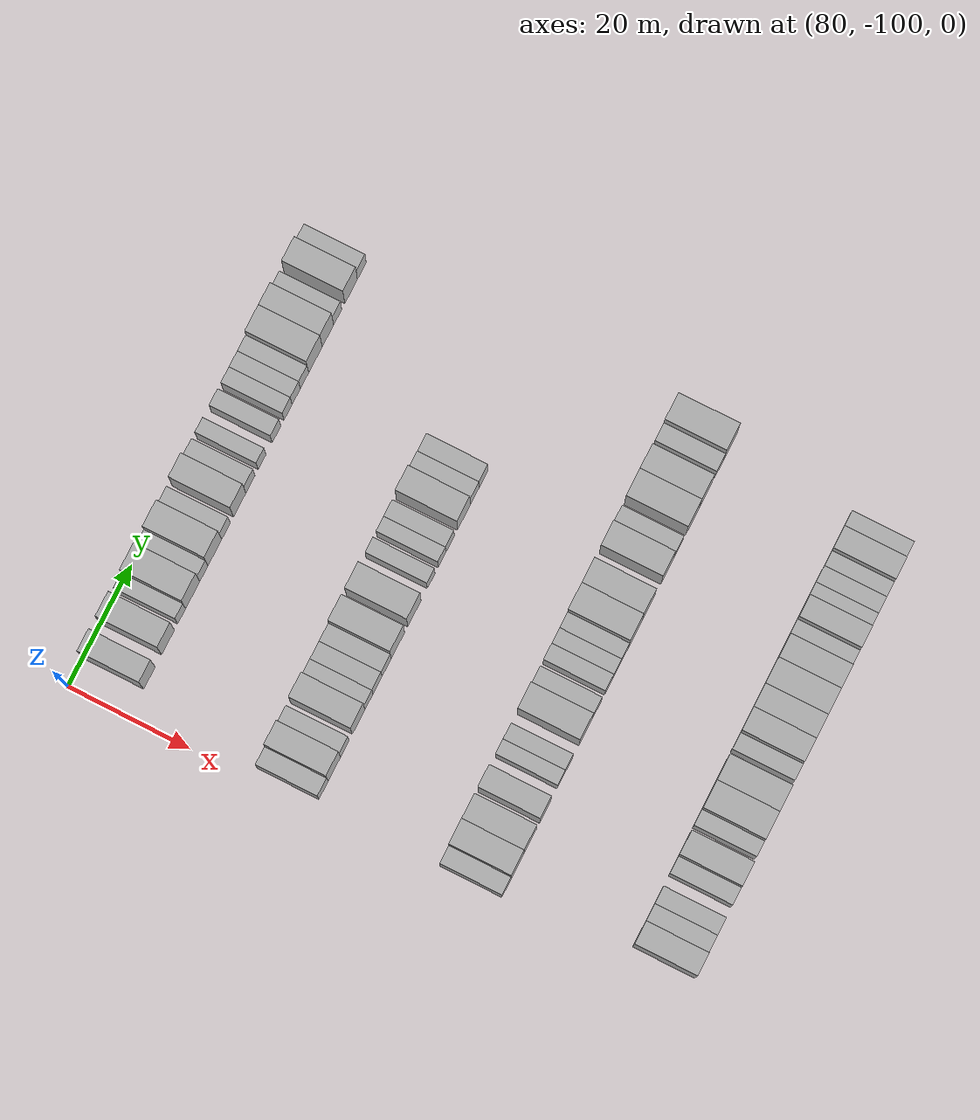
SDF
<sdf version="1.6">
 <world name="default">
  <model name="building_553">
   <static>1</static>
   <pose>85.0000 -93.4616 0 0.000000 0.000000 0.000000</pose>
   <link name="link">
    <pose>0 0 4.50 0 0 0</pose>
    <collision name="collision"><geometry><box><size>10.0000 3.6238 9.0000</size></box></geometry></collision>
    <visual name="visual">
     <cast_shadows>0</cast_shadows>
     <geometry><box><size>10.0000 3.6238 9.0000</size></box></geometry>
     <material>
      <script>
       <uri>model://HANNAS_wall/materials/scripts</uri>
       <uri>model://HANNAS_wall/materials/textures</uri>
       <name>vrc/HANNAS_wall</name>
      </script>
     </material>
    </visual>
   </link>
  </model>
  <model name="building_554">
   <static>1</static>
   <pose>85.0000 -87.6176 0 0.000000 0.000000 0.000000</pose>
   <link name="link">
    <pose>0 0 4.50 0 0 0</pose>
    <collision name="collision"><geometry><box><size>10.0000 4.0642 9.0000</size></box></geometry></collision>
    <visual name="visual">
     <cast_shadows>0</cast_shadows>
     <geometry><box><size>10.0000 4.0642 9.0000</size></box></geometry>
     <material>
      <script>
       <uri>model://HANNAS_wall/materials/scripts</uri>
       <uri>model://HANNAS_wall/materials/textures</uri>
       <name>vrc/HANNAS_wall</name>
      </script>
     </material>
    </visual>
   </link>
  </model>
  <model name="building_555">
   <static>1</static>
   <pose>85.0000 -83.3449 0 0.000000 0.000000 0.000000</pose>
   <link name="link">
    <pose>0 0 3.00 0 0 0</pose>
    <collision name="collision"><geometry><box><size>10.0000 2.4812 6.0000</size></box></geometry></collision>
    <visual name="visual">
     <cast_shadows>0</cast_shadows>
     <geometry><box><size>10.0000 2.4812 6.0000</size></box></geometry>
     <material>
      <script>
       <uri>model://HANNAS_wall/materials/scripts</uri>
       <uri>model://HANNAS_wall/materials/textures</uri>
       <name>vrc/HANNAS_wall</name>
      </script>
     </material>
    </visual>
   </link>
  </model>
  <model name="building_556">
   <static>1</static>
   <pose>85.0000 -79.8800 0 0.000000 0.000000 0.000000</pose>
   <link name="link">
    <pose>0 0 4.50 0 0 0</pose>
    <collision name="collision"><geometry><box><size>10.0000 4.4484 9.0000</size></box></geometry></collision>
    <visual name="visual">
     <cast_shadows>0</cast_shadows>
     <geometry><box><size>10.0000 4.4484 9.0000</size></box></geometry>
     <material>
      <script>
       <uri>model://HANNAS_wall/materials/scripts</uri>
       <uri>model://HANNAS_wall/materials/textures</uri>
       <name>vrc/HANNAS_wall</name>
      </script>
     </material>
    </visual>
   </link>
  </model>
  <model name="building_557">
   <static>1</static>
   <pose>85.0000 -76.3557 0 0.000000 0.000000 0.000000</pose>
   <link name="link">
    <pose>0 0 3.00 0 0 0</pose>
    <collision name="collision"><geometry><box><size>10.0000 2.6003 6.0000</size></box></geometry></collision>
    <visual name="visual">
     <cast_shadows>0</cast_shadows>
     <geometry><box><size>10.0000 2.6003 6.0000</size></box></geometry>
     <material>
      <script>
       <uri>model://HANNAS_wall/materials/scripts</uri>
       <uri>model://HANNAS_wall/materials/textures</uri>
       <name>vrc/HANNAS_wall</name>
      </script>
     </material>
    </visual>
   </link>
  </model>
  <model name="building_558">
   <static>1</static>
   <pose>85.0000 -72.8877 0 0.000000 0.000000 0.000000</pose>
   <link name="link">
    <pose>0 0 4.50 0 0 0</pose>
    <collision name="collision"><geometry><box><size>10.0000 4.3357 9.0000</size></box></geometry></collision>
    <visual name="visual">
     <cast_shadows>0</cast_shadows>
     <geometry><box><size>10.0000 4.3357 9.0000</size></box></geometry>
     <material>
      <script>
       <uri>model://HANNAS_wall/materials/scripts</uri>
       <uri>model://HANNAS_wall/materials/textures</uri>
       <name>vrc/HANNAS_wall</name>
      </script>
     </material>
    </visual>
   </link>
  </model>
  <model name="building_559">
   <static>1</static>
   <pose>85.0000 -69.3419 0 0.000000 0.000000 0.000000</pose>
   <link name="link">
    <pose>0 0 3.00 0 0 0</pose>
    <collision name="collision"><geometry><box><size>10.0000 2.7560 6.0000</size></box></geometry></collision>
    <visual name="visual">
     <cast_shadows>0</cast_shadows>
     <geometry><box><size>10.0000 2.7560 6.0000</size></box></geometry>
     <material>
      <script>
       <uri>model://HANNAS_wall/materials/scripts</uri>
       <uri>model://HANNAS_wall/materials/textures</uri>
       <name>vrc/HANNAS_wall</name>
      </script>
     </material>
    </visual>
   </link>
  </model>
  <model name="building_560">
   <static>1</static>
   <pose>85.0000 -65.0018 0 0.000000 0.000000 0.000000</pose>
   <link name="link">
    <pose>0 0 4.50 0 0 0</pose>
    <collision name="collision"><geometry><box><size>10.0000 3.9242 9.0000</size></box></geometry></collision>
    <visual name="visual">
     <cast_shadows>0</cast_shadows>
     <geometry><box><size>10.0000 3.9242 9.0000</size></box></geometry>
     <material>
      <script>
       <uri>model://HANNAS_wall/materials/scripts</uri>
       <uri>model://HANNAS_wall/materials/textures</uri>
       <name>vrc/HANNAS_wall</name>
      </script>
     </material>
    </visual>
   </link>
  </model>
  <model name="building_561">
   <static>1</static>
   <pose>85.0000 -61.5790 0 0.000000 0.000000 0.000000</pose>
   <link name="link">
    <pose>0 0 3.00 0 0 0</pose>
    <collision name="collision"><geometry><box><size>10.0000 2.9213 6.0000</size></box></geometry></collision>
    <visual name="visual">
     <cast_shadows>0</cast_shadows>
     <geometry><box><size>10.0000 2.9213 6.0000</size></box></geometry>
     <material>
      <script>
       <uri>model://HANNAS_wall/materials/scripts</uri>
       <uri>model://HANNAS_wall/materials/textures</uri>
       <name>vrc/HANNAS_wall</name>
      </script>
     </material>
    </visual>
   </link>
  </model>
  <model name="building_562">
   <static>1</static>
   <pose>85.0000 -57.8842 0 0.000000 0.000000 0.000000</pose>
   <link name="link">
    <pose>0 0 3.00 0 0 0</pose>
    <collision name="collision"><geometry><box><size>10.0000 2.4681 6.0000</size></box></geometry></collision>
    <visual name="visual">
     <cast_shadows>0</cast_shadows>
     <geometry><box><size>10.0000 2.4681 6.0000</size></box></geometry>
     <material>
      <script>
       <uri>model://HANNAS_wall/materials/scripts</uri>
       <uri>model://HANNAS_wall/materials/textures</uri>
       <name>vrc/HANNAS_wall</name>
      </script>
     </material>
    </visual>
   </link>
  </model>
  <model name="building_563">
   <static>1</static>
   <pose>85.0000 -53.2837 0 0.000000 0.000000 0.000000</pose>
   <link name="link">
    <pose>0 0 3.00 0 0 0</pose>
    <collision name="collision"><geometry><box><size>10.0000 2.7330 6.0000</size></box></geometry></collision>
    <visual name="visual">
     <cast_shadows>0</cast_shadows>
     <geometry><box><size>10.0000 2.7330 6.0000</size></box></geometry>
     <material>
      <script>
       <uri>model://HANNAS_wall/materials/scripts</uri>
       <uri>model://HANNAS_wall/materials/textures</uri>
       <name>vrc/HANNAS_wall</name>
      </script>
     </material>
    </visual>
   </link>
  </model>
  <model name="building_564">
   <static>1</static>
   <pose>85.0000 -49.6089 0 0.000000 0.000000 0.000000</pose>
   <link name="link">
    <pose>0 0 3.00 0 0 0</pose>
    <collision name="collision"><geometry><box><size>10.0000 2.6166 6.0000</size></box></geometry></collision>
    <visual name="visual">
     <cast_shadows>0</cast_shadows>
     <geometry><box><size>10.0000 2.6166 6.0000</size></box></geometry>
     <material>
      <script>
       <uri>model://HANNAS_wall/materials/scripts</uri>
       <uri>model://HANNAS_wall/materials/textures</uri>
       <name>vrc/HANNAS_wall</name>
      </script>
     </material>
    </visual>
   </link>
  </model>
  <model name="building_565">
   <static>1</static>
   <pose>85.0000 -46.9937 0 0.000000 0.000000 0.000000</pose>
   <link name="link">
    <pose>0 0 3.00 0 0 0</pose>
    <collision name="collision"><geometry><box><size>10.0000 2.6138 6.0000</size></box></geometry></collision>
    <visual name="visual">
     <cast_shadows>0</cast_shadows>
     <geometry><box><size>10.0000 2.6138 6.0000</size></box></geometry>
     <material>
      <script>
       <uri>model://HANNAS_wall/materials/scripts</uri>
       <uri>model://HANNAS_wall/materials/textures</uri>
       <name>vrc/HANNAS_wall</name>
      </script>
     </material>
    </visual>
   </link>
  </model>
  <model name="building_566">
   <static>1</static>
   <pose>85.0000 -44.3550 0 0.000000 0.000000 0.000000</pose>
   <link name="link">
    <pose>0 0 3.00 0 0 0</pose>
    <collision name="collision"><geometry><box><size>10.0000 2.6635 6.0000</size></box></geometry></collision>
    <visual name="visual">
     <cast_shadows>0</cast_shadows>
     <geometry><box><size>10.0000 2.6635 6.0000</size></box></geometry>
     <material>
      <script>
       <uri>model://HANNAS_wall/materials/scripts</uri>
       <uri>model://HANNAS_wall/materials/textures</uri>
       <name>vrc/HANNAS_wall</name>
      </script>
     </material>
    </visual>
   </link>
  </model>
  <model name="building_567">
   <static>1</static>
   <pose>85.0000 -40.8566 0 0.000000 0.000000 0.000000</pose>
   <link name="link">
    <pose>0 0 4.50 0 0 0</pose>
    <collision name="collision"><geometry><box><size>10.0000 4.3334 9.0000</size></box></geometry></collision>
    <visual name="visual">
     <cast_shadows>0</cast_shadows>
     <geometry><box><size>10.0000 4.3334 9.0000</size></box></geometry>
     <material>
      <script>
       <uri>model://HANNAS_wall/materials/scripts</uri>
       <uri>model://HANNAS_wall/materials/textures</uri>
       <name>vrc/HANNAS_wall</name>
      </script>
     </material>
    </visual>
   </link>
  </model>
  <model name="building_568">
   <static>1</static>
   <pose>85.0000 -36.8507 0 0.000000 0.000000 0.000000</pose>
   <link name="link">
    <pose>0 0 4.50 0 0 0</pose>
    <collision name="collision"><geometry><box><size>10.0000 3.6784 9.0000</size></box></geometry></collision>
    <visual name="visual">
     <cast_shadows>0</cast_shadows>
     <geometry><box><size>10.0000 3.6784 9.0000</size></box></geometry>
     <material>
      <script>
       <uri>model://HANNAS_wall/materials/scripts</uri>
       <uri>model://HANNAS_wall/materials/textures</uri>
       <name>vrc/HANNAS_wall</name>
      </script>
     </material>
    </visual>
   </link>
  </model>
  <model name="building_569">
   <static>1</static>
   <pose>85.0000 -33.7193 0 0.000000 0.000000 0.000000</pose>
   <link name="link">
    <pose>0 0 3.00 0 0 0</pose>
    <collision name="collision"><geometry><box><size>10.0000 2.5843 6.0000</size></box></geometry></collision>
    <visual name="visual">
     <cast_shadows>0</cast_shadows>
     <geometry><box><size>10.0000 2.5843 6.0000</size></box></geometry>
     <material>
      <script>
       <uri>model://HANNAS_wall/materials/scripts</uri>
       <uri>model://HANNAS_wall/materials/textures</uri>
       <name>vrc/HANNAS_wall</name>
      </script>
     </material>
    </visual>
   </link>
  </model>
  <model name="building_570">
   <static>1</static>
   <pose>85.0000 -29.4068 0 0.000000 0.000000 0.000000</pose>
   <link name="link">
    <pose>0 0 4.50 0 0 0</pose>
    <collision name="collision"><geometry><box><size>10.0000 4.0407 9.0000</size></box></geometry></collision>
    <visual name="visual">
     <cast_shadows>0</cast_shadows>
     <geometry><box><size>10.0000 4.0407 9.0000</size></box></geometry>
     <material>
      <script>
       <uri>model://HANNAS_wall/materials/scripts</uri>
       <uri>model://HANNAS_wall/materials/textures</uri>
       <name>vrc/HANNAS_wall</name>
      </script>
     </material>
    </visual>
   </link>
  </model>
  <model name="building_571">
   <static>1</static>
   <pose>85.0000 -25.9725 0 0.000000 0.000000 0.000000</pose>
   <link name="link">
    <pose>0 0 3.00 0 0 0</pose>
    <collision name="collision"><geometry><box><size>10.0000 2.8279 6.0000</size></box></geometry></collision>
    <visual name="visual">
     <cast_shadows>0</cast_shadows>
     <geometry><box><size>10.0000 2.8279 6.0000</size></box></geometry>
     <material>
      <script>
       <uri>model://HANNAS_wall/materials/scripts</uri>
       <uri>model://HANNAS_wall/materials/textures</uri>
       <name>vrc/HANNAS_wall</name>
      </script>
     </material>
    </visual>
   </link>
  </model>
  <model name="building_784">
   <static>1</static>
   <pose>115.0000 -96.5742 0 0.000000 0.000000 0.000000</pose>
   <link name="link">
    <pose>0 0 3.00 0 0 0</pose>
    <collision name="collision"><geometry><box><size>10.0000 2.9273 6.0000</size></box></geometry></collision>
    <visual name="visual">
     <cast_shadows>0</cast_shadows>
     <geometry><box><size>10.0000 2.9273 6.0000</size></box></geometry>
     <material>
      <script>
       <uri>model://HANNAS_wall/materials/scripts</uri>
       <uri>model://HANNAS_wall/materials/textures</uri>
       <name>vrc/HANNAS_wall</name>
      </script>
     </material>
    </visual>
   </link>
  </model>
  <model name="building_785">
   <static>1</static>
   <pose>115.0000 -93.1350 0 0.000000 0.000000 0.000000</pose>
   <link name="link">
    <pose>0 0 4.50 0 0 0</pose>
    <collision name="collision"><geometry><box><size>10.0000 3.9510 9.0000</size></box></geometry></collision>
    <visual name="visual">
     <cast_shadows>0</cast_shadows>
     <geometry><box><size>10.0000 3.9510 9.0000</size></box></geometry>
     <material>
      <script>
       <uri>model://HANNAS_wall/materials/scripts</uri>
       <uri>model://HANNAS_wall/materials/textures</uri>
       <name>vrc/HANNAS_wall</name>
      </script>
     </material>
    </visual>
   </link>
  </model>
  <model name="building_786">
   <static>1</static>
   <pose>115.0000 -89.7936 0 0.000000 0.000000 0.000000</pose>
   <link name="link">
    <pose>0 0 3.00 0 0 0</pose>
    <collision name="collision"><geometry><box><size>10.0000 2.7318 6.0000</size></box></geometry></collision>
    <visual name="visual">
     <cast_shadows>0</cast_shadows>
     <geometry><box><size>10.0000 2.7318 6.0000</size></box></geometry>
     <material>
      <script>
       <uri>model://HANNAS_wall/materials/scripts</uri>
       <uri>model://HANNAS_wall/materials/textures</uri>
       <name>vrc/HANNAS_wall</name>
      </script>
     </material>
    </visual>
   </link>
  </model>
  <model name="building_787">
   <static>1</static>
   <pose>115.0000 -85.4244 0 0.000000 0.000000 0.000000</pose>
   <link name="link">
    <pose>0 0 4.50 0 0 0</pose>
    <collision name="collision"><geometry><box><size>10.0000 4.0067 9.0000</size></box></geometry></collision>
    <visual name="visual">
     <cast_shadows>0</cast_shadows>
     <geometry><box><size>10.0000 4.0067 9.0000</size></box></geometry>
     <material>
      <script>
       <uri>model://HANNAS_wall/materials/scripts</uri>
       <uri>model://HANNAS_wall/materials/textures</uri>
       <name>vrc/HANNAS_wall</name>
      </script>
     </material>
    </visual>
   </link>
  </model>
  <model name="building_788">
   <static>1</static>
   <pose>115.0000 -82.1629 0 0.000000 0.000000 0.000000</pose>
   <link name="link">
    <pose>0 0 3.00 0 0 0</pose>
    <collision name="collision"><geometry><box><size>10.0000 2.5163 6.0000</size></box></geometry></collision>
    <visual name="visual">
     <cast_shadows>0</cast_shadows>
     <geometry><box><size>10.0000 2.5163 6.0000</size></box></geometry>
     <material>
      <script>
       <uri>model://HANNAS_wall/materials/scripts</uri>
       <uri>model://HANNAS_wall/materials/textures</uri>
       <name>vrc/HANNAS_wall</name>
      </script>
     </material>
    </visual>
   </link>
  </model>
  <model name="building_789">
   <static>1</static>
   <pose>115.0000 -79.4621 0 0.000000 0.000000 0.000000</pose>
   <link name="link">
    <pose>0 0 3.00 0 0 0</pose>
    <collision name="collision"><geometry><box><size>10.0000 2.8852 6.0000</size></box></geometry></collision>
    <visual name="visual">
     <cast_shadows>0</cast_shadows>
     <geometry><box><size>10.0000 2.8852 6.0000</size></box></geometry>
     <material>
      <script>
       <uri>model://HANNAS_wall/materials/scripts</uri>
       <uri>model://HANNAS_wall/materials/textures</uri>
       <name>vrc/HANNAS_wall</name>
      </script>
     </material>
    </visual>
   </link>
  </model>
  <model name="building_790">
   <static>1</static>
   <pose>115.0000 -76.5512 0 0.000000 0.000000 0.000000</pose>
   <link name="link">
    <pose>0 0 3.00 0 0 0</pose>
    <collision name="collision"><geometry><box><size>10.0000 2.9367 6.0000</size></box></geometry></collision>
    <visual name="visual">
     <cast_shadows>0</cast_shadows>
     <geometry><box><size>10.0000 2.9367 6.0000</size></box></geometry>
     <material>
      <script>
       <uri>model://HANNAS_wall/materials/scripts</uri>
       <uri>model://HANNAS_wall/materials/textures</uri>
       <name>vrc/HANNAS_wall</name>
      </script>
     </material>
    </visual>
   </link>
  </model>
  <model name="building_791">
   <static>1</static>
   <pose>115.0000 -72.9462 0 0.000000 0.000000 0.000000</pose>
   <link name="link">
    <pose>0 0 4.50 0 0 0</pose>
    <collision name="collision"><geometry><box><size>10.0000 4.2733 9.0000</size></box></geometry></collision>
    <visual name="visual">
     <cast_shadows>0</cast_shadows>
     <geometry><box><size>10.0000 4.2733 9.0000</size></box></geometry>
     <material>
      <script>
       <uri>model://HANNAS_wall/materials/scripts</uri>
       <uri>model://HANNAS_wall/materials/textures</uri>
       <name>vrc/HANNAS_wall</name>
      </script>
     </material>
    </visual>
   </link>
  </model>
  <model name="building_792">
   <static>1</static>
   <pose>115.0000 -67.6805 0 0.000000 0.000000 0.000000</pose>
   <link name="link">
    <pose>0 0 4.50 0 0 0</pose>
    <collision name="collision"><geometry><box><size>10.0000 4.2580 9.0000</size></box></geometry></collision>
    <visual name="visual">
     <cast_shadows>0</cast_shadows>
     <geometry><box><size>10.0000 4.2580 9.0000</size></box></geometry>
     <material>
      <script>
       <uri>model://HANNAS_wall/materials/scripts</uri>
       <uri>model://HANNAS_wall/materials/textures</uri>
       <name>vrc/HANNAS_wall</name>
      </script>
     </material>
    </visual>
   </link>
  </model>
  <model name="building_793">
   <static>1</static>
   <pose>115.0000 -62.3167 0 0.000000 0.000000 0.000000</pose>
   <link name="link">
    <pose>0 0 3.00 0 0 0</pose>
    <collision name="collision"><geometry><box><size>10.0000 2.4696 6.0000</size></box></geometry></collision>
    <visual name="visual">
     <cast_shadows>0</cast_shadows>
     <geometry><box><size>10.0000 2.4696 6.0000</size></box></geometry>
     <material>
      <script>
       <uri>model://HANNAS_wall/materials/scripts</uri>
       <uri>model://HANNAS_wall/materials/textures</uri>
       <name>vrc/HANNAS_wall</name>
      </script>
     </material>
    </visual>
   </link>
  </model>
  <model name="building_794">
   <static>1</static>
   <pose>115.0000 -58.8653 0 0.000000 0.000000 0.000000</pose>
   <link name="link">
    <pose>0 0 3.00 0 0 0</pose>
    <collision name="collision"><geometry><box><size>10.0000 2.4332 6.0000</size></box></geometry></collision>
    <visual name="visual">
     <cast_shadows>0</cast_shadows>
     <geometry><box><size>10.0000 2.4332 6.0000</size></box></geometry>
     <material>
      <script>
       <uri>model://HANNAS_wall/materials/scripts</uri>
       <uri>model://HANNAS_wall/materials/textures</uri>
       <name>vrc/HANNAS_wall</name>
      </script>
     </material>
    </visual>
   </link>
  </model>
  <model name="building_795">
   <static>1</static>
   <pose>115.0000 -56.2774 0 0.000000 0.000000 0.000000</pose>
   <link name="link">
    <pose>0 0 3.00 0 0 0</pose>
    <collision name="collision"><geometry><box><size>10.0000 2.7426 6.0000</size></box></geometry></collision>
    <visual name="visual">
     <cast_shadows>0</cast_shadows>
     <geometry><box><size>10.0000 2.7426 6.0000</size></box></geometry>
     <material>
      <script>
       <uri>model://HANNAS_wall/materials/scripts</uri>
       <uri>model://HANNAS_wall/materials/textures</uri>
       <name>vrc/HANNAS_wall</name>
      </script>
     </material>
    </visual>
   </link>
  </model>
  <model name="building_796">
   <static>1</static>
   <pose>115.0000 -51.8661 0 0.000000 0.000000 0.000000</pose>
   <link name="link">
    <pose>0 0 4.50 0 0 0</pose>
    <collision name="collision"><geometry><box><size>10.0000 4.0800 9.0000</size></box></geometry></collision>
    <visual name="visual">
     <cast_shadows>0</cast_shadows>
     <geometry><box><size>10.0000 4.0800 9.0000</size></box></geometry>
     <material>
      <script>
       <uri>model://HANNAS_wall/materials/scripts</uri>
       <uri>model://HANNAS_wall/materials/textures</uri>
       <name>vrc/HANNAS_wall</name>
      </script>
     </material>
    </visual>
   </link>
  </model>
  <model name="building_797">
   <static>1</static>
   <pose>115.0000 -48.3884 0 0.000000 0.000000 0.000000</pose>
   <link name="link">
    <pose>0 0 3.00 0 0 0</pose>
    <collision name="collision"><geometry><box><size>10.0000 2.8755 6.0000</size></box></geometry></collision>
    <visual name="visual">
     <cast_shadows>0</cast_shadows>
     <geometry><box><size>10.0000 2.8755 6.0000</size></box></geometry>
     <material>
      <script>
       <uri>model://HANNAS_wall/materials/scripts</uri>
       <uri>model://HANNAS_wall/materials/textures</uri>
       <name>vrc/HANNAS_wall</name>
      </script>
     </material>
    </visual>
   </link>
  </model>
  <model name="building_798">
   <static>1</static>
   <pose>115.0000 -45.4996 0 0.000000 0.000000 0.000000</pose>
   <link name="link">
    <pose>0 0 3.00 0 0 0</pose>
    <collision name="collision"><geometry><box><size>10.0000 2.9020 6.0000</size></box></geometry></collision>
    <visual name="visual">
     <cast_shadows>0</cast_shadows>
     <geometry><box><size>10.0000 2.9020 6.0000</size></box></geometry>
     <material>
      <script>
       <uri>model://HANNAS_wall/materials/scripts</uri>
       <uri>model://HANNAS_wall/materials/textures</uri>
       <name>vrc/HANNAS_wall</name>
      </script>
     </material>
    </visual>
   </link>
  </model>
  <model name="building_1005">
   <static>1</static>
   <pose>145.0000 -97.2144 0 0.000000 0.000000 0.000000</pose>
   <link name="link">
    <pose>0 0 3.00 0 0 0</pose>
    <collision name="collision"><geometry><box><size>10.0000 2.9042 6.0000</size></box></geometry></collision>
    <visual name="visual">
     <cast_shadows>0</cast_shadows>
     <geometry><box><size>10.0000 2.9042 6.0000</size></box></geometry>
     <material>
      <script>
       <uri>model://HANNAS_wall/materials/scripts</uri>
       <uri>model://HANNAS_wall/materials/textures</uri>
       <name>vrc/HANNAS_wall</name>
      </script>
     </material>
    </visual>
   </link>
  </model>
  <model name="building_1006">
   <static>1</static>
   <pose>145.0000 -93.7216 0 0.000000 0.000000 0.000000</pose>
   <link name="link">
    <pose>0 0 4.50 0 0 0</pose>
    <collision name="collision"><geometry><box><size>10.0000 4.0815 9.0000</size></box></geometry></collision>
    <visual name="visual">
     <cast_shadows>0</cast_shadows>
     <geometry><box><size>10.0000 4.0815 9.0000</size></box></geometry>
     <material>
      <script>
       <uri>model://HANNAS_wall/materials/scripts</uri>
       <uri>model://HANNAS_wall/materials/textures</uri>
       <name>vrc/HANNAS_wall</name>
      </script>
     </material>
    </visual>
   </link>
  </model>
  <model name="building_1007">
   <static>1</static>
   <pose>145.0000 -89.6638 0 0.000000 0.000000 0.000000</pose>
   <link name="link">
    <pose>0 0 4.50 0 0 0</pose>
    <collision name="collision"><geometry><box><size>10.0000 4.0341 9.0000</size></box></geometry></collision>
    <visual name="visual">
     <cast_shadows>0</cast_shadows>
     <geometry><box><size>10.0000 4.0341 9.0000</size></box></geometry>
     <material>
      <script>
       <uri>model://HANNAS_wall/materials/scripts</uri>
       <uri>model://HANNAS_wall/materials/textures</uri>
       <name>vrc/HANNAS_wall</name>
      </script>
     </material>
    </visual>
   </link>
  </model>
  <model name="building_1008">
   <static>1</static>
   <pose>145.0000 -84.8446 0 0.000000 0.000000 0.000000</pose>
   <link name="link">
    <pose>0 0 4.50 0 0 0</pose>
    <collision name="collision"><geometry><box><size>10.0000 3.6044 9.0000</size></box></geometry></collision>
    <visual name="visual">
     <cast_shadows>0</cast_shadows>
     <geometry><box><size>10.0000 3.6044 9.0000</size></box></geometry>
     <material>
      <script>
       <uri>model://HANNAS_wall/materials/scripts</uri>
       <uri>model://HANNAS_wall/materials/textures</uri>
       <name>vrc/HANNAS_wall</name>
      </script>
     </material>
    </visual>
   </link>
  </model>
  <model name="building_1009">
   <static>1</static>
   <pose>145.0000 -79.8235 0 0.000000 0.000000 0.000000</pose>
   <link name="link">
    <pose>0 0 3.00 0 0 0</pose>
    <collision name="collision"><geometry><box><size>10.0000 2.4377 6.0000</size></box></geometry></collision>
    <visual name="visual">
     <cast_shadows>0</cast_shadows>
     <geometry><box><size>10.0000 2.4377 6.0000</size></box></geometry>
     <material>
      <script>
       <uri>model://HANNAS_wall/materials/scripts</uri>
       <uri>model://HANNAS_wall/materials/textures</uri>
       <name>vrc/HANNAS_wall</name>
      </script>
     </material>
    </visual>
   </link>
  </model>
  <model name="building_1010">
   <static>1</static>
   <pose>145.0000 -77.3132 0 0.000000 0.000000 0.000000</pose>
   <link name="link">
    <pose>0 0 3.00 0 0 0</pose>
    <collision name="collision"><geometry><box><size>10.0000 2.5829 6.0000</size></box></geometry></collision>
    <visual name="visual">
     <cast_shadows>0</cast_shadows>
     <geometry><box><size>10.0000 2.5829 6.0000</size></box></geometry>
     <material>
      <script>
       <uri>model://HANNAS_wall/materials/scripts</uri>
       <uri>model://HANNAS_wall/materials/textures</uri>
       <name>vrc/HANNAS_wall</name>
      </script>
     </material>
    </visual>
   </link>
  </model>
  <model name="building_1011">
   <static>1</static>
   <pose>145.0000 -71.8766 0 0.000000 0.000000 0.000000</pose>
   <link name="link">
    <pose>0 0 4.50 0 0 0</pose>
    <collision name="collision"><geometry><box><size>10.0000 4.2902 9.0000</size></box></geometry></collision>
    <visual name="visual">
     <cast_shadows>0</cast_shadows>
     <geometry><box><size>10.0000 4.2902 9.0000</size></box></geometry>
     <material>
      <script>
       <uri>model://HANNAS_wall/materials/scripts</uri>
       <uri>model://HANNAS_wall/materials/textures</uri>
       <name>vrc/HANNAS_wall</name>
      </script>
     </material>
    </visual>
   </link>
  </model>
  <model name="building_1012">
   <static>1</static>
   <pose>145.0000 -68.2620 0 0.000000 0.000000 0.000000</pose>
   <link name="link">
    <pose>0 0 3.00 0 0 0</pose>
    <collision name="collision"><geometry><box><size>10.0000 2.9390 6.0000</size></box></geometry></collision>
    <visual name="visual">
     <cast_shadows>0</cast_shadows>
     <geometry><box><size>10.0000 2.9390 6.0000</size></box></geometry>
     <material>
      <script>
       <uri>model://HANNAS_wall/materials/scripts</uri>
       <uri>model://HANNAS_wall/materials/textures</uri>
       <name>vrc/HANNAS_wall</name>
      </script>
     </material>
    </visual>
   </link>
  </model>
  <model name="building_1013">
   <static>1</static>
   <pose>145.0000 -64.4455 0 0.000000 0.000000 0.000000</pose>
   <link name="link">
    <pose>0 0 3.00 0 0 0</pose>
    <collision name="collision"><geometry><box><size>10.0000 2.6942 6.0000</size></box></geometry></collision>
    <visual name="visual">
     <cast_shadows>0</cast_shadows>
     <geometry><box><size>10.0000 2.6942 6.0000</size></box></geometry>
     <material>
      <script>
       <uri>model://HANNAS_wall/materials/scripts</uri>
       <uri>model://HANNAS_wall/materials/textures</uri>
       <name>vrc/HANNAS_wall</name>
      </script>
     </material>
    </visual>
   </link>
  </model>
  <model name="building_1014">
   <static>1</static>
   <pose>145.0000 -61.8497 0 0.000000 0.000000 0.000000</pose>
   <link name="link">
    <pose>0 0 3.00 0 0 0</pose>
    <collision name="collision"><geometry><box><size>10.0000 2.4974 6.0000</size></box></geometry></collision>
    <visual name="visual">
     <cast_shadows>0</cast_shadows>
     <geometry><box><size>10.0000 2.4974 6.0000</size></box></geometry>
     <material>
      <script>
       <uri>model://HANNAS_wall/materials/scripts</uri>
       <uri>model://HANNAS_wall/materials/textures</uri>
       <name>vrc/HANNAS_wall</name>
      </script>
     </material>
    </visual>
   </link>
  </model>
  <model name="building_1015">
   <static>1</static>
   <pose>145.0000 -59.3159 0 0.000000 0.000000 0.000000</pose>
   <link name="link">
    <pose>0 0 3.00 0 0 0</pose>
    <collision name="collision"><geometry><box><size>10.0000 2.5700 6.0000</size></box></geometry></collision>
    <visual name="visual">
     <cast_shadows>0</cast_shadows>
     <geometry><box><size>10.0000 2.5700 6.0000</size></box></geometry>
     <material>
      <script>
       <uri>model://HANNAS_wall/materials/scripts</uri>
       <uri>model://HANNAS_wall/materials/textures</uri>
       <name>vrc/HANNAS_wall</name>
      </script>
     </material>
    </visual>
   </link>
  </model>
  <model name="building_1016">
   <static>1</static>
   <pose>145.0000 -55.8508 0 0.000000 0.000000 0.000000</pose>
   <link name="link">
    <pose>0 0 4.50 0 0 0</pose>
    <collision name="collision"><geometry><box><size>10.0000 4.3602 9.0000</size></box></geometry></collision>
    <visual name="visual">
     <cast_shadows>0</cast_shadows>
     <geometry><box><size>10.0000 4.3602 9.0000</size></box></geometry>
     <material>
      <script>
       <uri>model://HANNAS_wall/materials/scripts</uri>
       <uri>model://HANNAS_wall/materials/textures</uri>
       <name>vrc/HANNAS_wall</name>
      </script>
     </material>
    </visual>
   </link>
  </model>
  <model name="building_1017">
   <static>1</static>
   <pose>145.0000 -51.6359 0 0.000000 0.000000 0.000000</pose>
   <link name="link">
    <pose>0 0 4.50 0 0 0</pose>
    <collision name="collision"><geometry><box><size>10.0000 4.0696 9.0000</size></box></geometry></collision>
    <visual name="visual">
     <cast_shadows>0</cast_shadows>
     <geometry><box><size>10.0000 4.0696 9.0000</size></box></geometry>
     <material>
      <script>
       <uri>model://HANNAS_wall/materials/scripts</uri>
       <uri>model://HANNAS_wall/materials/textures</uri>
       <name>vrc/HANNAS_wall</name>
      </script>
     </material>
    </visual>
   </link>
  </model>
  <model name="building_1018">
   <static>1</static>
   <pose>145.0000 -45.5691 0 0.000000 0.000000 0.000000</pose>
   <link name="link">
    <pose>0 0 4.50 0 0 0</pose>
    <collision name="collision"><geometry><box><size>10.0000 4.0641 9.0000</size></box></geometry></collision>
    <visual name="visual">
     <cast_shadows>0</cast_shadows>
     <geometry><box><size>10.0000 4.0641 9.0000</size></box></geometry>
     <material>
      <script>
       <uri>model://HANNAS_wall/materials/scripts</uri>
       <uri>model://HANNAS_wall/materials/textures</uri>
       <name>vrc/HANNAS_wall</name>
      </script>
     </material>
    </visual>
   </link>
  </model>
  <model name="building_1019">
   <static>1</static>
   <pose>145.0000 -42.0409 0 0.000000 0.000000 0.000000</pose>
   <link name="link">
    <pose>0 0 3.00 0 0 0</pose>
    <collision name="collision"><geometry><box><size>10.0000 2.9922 6.0000</size></box></geometry></collision>
    <visual name="visual">
     <cast_shadows>0</cast_shadows>
     <geometry><box><size>10.0000 2.9922 6.0000</size></box></geometry>
     <material>
      <script>
       <uri>model://HANNAS_wall/materials/scripts</uri>
       <uri>model://HANNAS_wall/materials/textures</uri>
       <name>vrc/HANNAS_wall</name>
      </script>
     </material>
    </visual>
   </link>
  </model>
  <model name="building_1020">
   <static>1</static>
   <pose>145.0000 -37.2953 0 0.000000 0.000000 0.000000</pose>
   <link name="link">
    <pose>0 0 4.50 0 0 0</pose>
    <collision name="collision"><geometry><box><size>10.0000 4.4990 9.0000</size></box></geometry></collision>
    <visual name="visual">
     <cast_shadows>0</cast_shadows>
     <geometry><box><size>10.0000 4.4990 9.0000</size></box></geometry>
     <material>
      <script>
       <uri>model://HANNAS_wall/materials/scripts</uri>
       <uri>model://HANNAS_wall/materials/textures</uri>
       <name>vrc/HANNAS_wall</name>
      </script>
     </material>
    </visual>
   </link>
  </model>
  <model name="building_1021">
   <static>1</static>
   <pose>145.0000 -33.0259 0 0.000000 0.000000 0.000000</pose>
   <link name="link">
    <pose>0 0 4.50 0 0 0</pose>
    <collision name="collision"><geometry><box><size>10.0000 4.0399 9.0000</size></box></geometry></collision>
    <visual name="visual">
     <cast_shadows>0</cast_shadows>
     <geometry><box><size>10.0000 4.0399 9.0000</size></box></geometry>
     <material>
      <script>
       <uri>model://HANNAS_wall/materials/scripts</uri>
       <uri>model://HANNAS_wall/materials/textures</uri>
       <name>vrc/HANNAS_wall</name>
      </script>
     </material>
    </visual>
   </link>
  </model>
  <model name="building_1022">
   <static>1</static>
   <pose>145.0000 -28.5434 0 0.000000 0.000000 0.000000</pose>
   <link name="link">
    <pose>0 0 3.00 0 0 0</pose>
    <collision name="collision"><geometry><box><size>10.0000 2.9252 6.0000</size></box></geometry></collision>
    <visual name="visual">
     <cast_shadows>0</cast_shadows>
     <geometry><box><size>10.0000 2.9252 6.0000</size></box></geometry>
     <material>
      <script>
       <uri>model://HANNAS_wall/materials/scripts</uri>
       <uri>model://HANNAS_wall/materials/textures</uri>
       <name>vrc/HANNAS_wall</name>
      </script>
     </material>
    </visual>
   </link>
  </model>
  <model name="building_1023">
   <static>1</static>
   <pose>145.0000 -24.8675 0 0.000000 0.000000 0.000000</pose>
   <link name="link">
    <pose>0 0 4.50 0 0 0</pose>
    <collision name="collision"><geometry><box><size>10.0000 4.4266 9.0000</size></box></geometry></collision>
    <visual name="visual">
     <cast_shadows>0</cast_shadows>
     <geometry><box><size>10.0000 4.4266 9.0000</size></box></geometry>
     <material>
      <script>
       <uri>model://HANNAS_wall/materials/scripts</uri>
       <uri>model://HANNAS_wall/materials/textures</uri>
       <name>vrc/HANNAS_wall</name>
      </script>
     </material>
    </visual>
   </link>
  </model>
  <model name="building_1240">
   <static>1</static>
   <pose>175.0000 -94.6217 0 0.000000 0.000000 0.000000</pose>
   <link name="link">
    <pose>0 0 4.50 0 0 0</pose>
    <collision name="collision"><geometry><box><size>10.0000 3.6979 9.0000</size></box></geometry></collision>
    <visual name="visual">
     <cast_shadows>0</cast_shadows>
     <geometry><box><size>10.0000 3.6979 9.0000</size></box></geometry>
     <material>
      <script>
       <uri>model://HANNAS_wall/materials/scripts</uri>
       <uri>model://HANNAS_wall/materials/textures</uri>
       <name>vrc/HANNAS_wall</name>
      </script>
     </material>
    </visual>
   </link>
  </model>
  <model name="building_1241">
   <static>1</static>
   <pose>175.0000 -91.2963 0 0.000000 0.000000 0.000000</pose>
   <link name="link">
    <pose>0 0 3.00 0 0 0</pose>
    <collision name="collision"><geometry><box><size>10.0000 2.9528 6.0000</size></box></geometry></collision>
    <visual name="visual">
     <cast_shadows>0</cast_shadows>
     <geometry><box><size>10.0000 2.9528 6.0000</size></box></geometry>
     <material>
      <script>
       <uri>model://HANNAS_wall/materials/scripts</uri>
       <uri>model://HANNAS_wall/materials/textures</uri>
       <name>vrc/HANNAS_wall</name>
      </script>
     </material>
    </visual>
   </link>
  </model>
  <model name="building_1242">
   <static>1</static>
   <pose>175.0000 -88.4195 0 0.000000 0.000000 0.000000</pose>
   <link name="link">
    <pose>0 0 3.00 0 0 0</pose>
    <collision name="collision"><geometry><box><size>10.0000 2.8009 6.0000</size></box></geometry></collision>
    <visual name="visual">
     <cast_shadows>0</cast_shadows>
     <geometry><box><size>10.0000 2.8009 6.0000</size></box></geometry>
     <material>
      <script>
       <uri>model://HANNAS_wall/materials/scripts</uri>
       <uri>model://HANNAS_wall/materials/textures</uri>
       <name>vrc/HANNAS_wall</name>
      </script>
     </material>
    </visual>
   </link>
  </model>
  <model name="building_1243">
   <static>1</static>
   <pose>175.0000 -83.6191 0 0.000000 0.000000 0.000000</pose>
   <link name="link">
    <pose>0 0 3.00 0 0 0</pose>
    <collision name="collision"><geometry><box><size>10.0000 2.7999 6.0000</size></box></geometry></collision>
    <visual name="visual">
     <cast_shadows>0</cast_shadows>
     <geometry><box><size>10.0000 2.7999 6.0000</size></box></geometry>
     <material>
      <script>
       <uri>model://HANNAS_wall/materials/scripts</uri>
       <uri>model://HANNAS_wall/materials/textures</uri>
       <name>vrc/HANNAS_wall</name>
      </script>
     </material>
    </visual>
   </link>
  </model>
  <model name="building_1244">
   <static>1</static>
   <pose>175.0000 -80.2558 0 0.000000 0.000000 0.000000</pose>
   <link name="link">
    <pose>0 0 4.50 0 0 0</pose>
    <collision name="collision"><geometry><box><size>10.0000 3.9266 9.0000</size></box></geometry></collision>
    <visual name="visual">
     <cast_shadows>0</cast_shadows>
     <geometry><box><size>10.0000 3.9266 9.0000</size></box></geometry>
     <material>
      <script>
       <uri>model://HANNAS_wall/materials/scripts</uri>
       <uri>model://HANNAS_wall/materials/textures</uri>
       <name>vrc/HANNAS_wall</name>
      </script>
     </material>
    </visual>
   </link>
  </model>
  <model name="building_1245">
   <static>1</static>
   <pose>175.0000 -76.0110 0 0.000000 0.000000 0.000000</pose>
   <link name="link">
    <pose>0 0 3.00 0 0 0</pose>
    <collision name="collision"><geometry><box><size>10.0000 2.5631 6.0000</size></box></geometry></collision>
    <visual name="visual">
     <cast_shadows>0</cast_shadows>
     <geometry><box><size>10.0000 2.5631 6.0000</size></box></geometry>
     <material>
      <script>
       <uri>model://HANNAS_wall/materials/scripts</uri>
       <uri>model://HANNAS_wall/materials/textures</uri>
       <name>vrc/HANNAS_wall</name>
      </script>
     </material>
    </visual>
   </link>
  </model>
  <model name="building_1246">
   <static>1</static>
   <pose>175.0000 -72.4920 0 0.000000 0.000000 0.000000</pose>
   <link name="link">
    <pose>0 0 4.50 0 0 0</pose>
    <collision name="collision"><geometry><box><size>10.0000 4.4748 9.0000</size></box></geometry></collision>
    <visual name="visual">
     <cast_shadows>0</cast_shadows>
     <geometry><box><size>10.0000 4.4748 9.0000</size></box></geometry>
     <material>
      <script>
       <uri>model://HANNAS_wall/materials/scripts</uri>
       <uri>model://HANNAS_wall/materials/textures</uri>
       <name>vrc/HANNAS_wall</name>
      </script>
     </material>
    </visual>
   </link>
  </model>
  <model name="building_1247">
   <static>1</static>
   <pose>175.0000 -68.1471 0 0.000000 0.000000 0.000000</pose>
   <link name="link">
    <pose>0 0 4.50 0 0 0</pose>
    <collision name="collision"><geometry><box><size>10.0000 4.2149 9.0000</size></box></geometry></collision>
    <visual name="visual">
     <cast_shadows>0</cast_shadows>
     <geometry><box><size>10.0000 4.2149 9.0000</size></box></geometry>
     <material>
      <script>
       <uri>model://HANNAS_wall/materials/scripts</uri>
       <uri>model://HANNAS_wall/materials/textures</uri>
       <name>vrc/HANNAS_wall</name>
      </script>
     </material>
    </visual>
   </link>
  </model>
  <model name="building_1248">
   <static>1</static>
   <pose>175.0000 -63.6801 0 0.000000 0.000000 0.000000</pose>
   <link name="link">
    <pose>0 0 3.00 0 0 0</pose>
    <collision name="collision"><geometry><box><size>10.0000 2.7191 6.0000</size></box></geometry></collision>
    <visual name="visual">
     <cast_shadows>0</cast_shadows>
     <geometry><box><size>10.0000 2.7191 6.0000</size></box></geometry>
     <material>
      <script>
       <uri>model://HANNAS_wall/materials/scripts</uri>
       <uri>model://HANNAS_wall/materials/textures</uri>
       <name>vrc/HANNAS_wall</name>
      </script>
     </material>
    </visual>
   </link>
  </model>
  <model name="building_1249">
   <static>1</static>
   <pose>175.0000 -60.4049 0 0.000000 0.000000 0.000000</pose>
   <link name="link">
    <pose>0 0 4.50 0 0 0</pose>
    <collision name="collision"><geometry><box><size>10.0000 3.8312 9.0000</size></box></geometry></collision>
    <visual name="visual">
     <cast_shadows>0</cast_shadows>
     <geometry><box><size>10.0000 3.8312 9.0000</size></box></geometry>
     <material>
      <script>
       <uri>model://HANNAS_wall/materials/scripts</uri>
       <uri>model://HANNAS_wall/materials/textures</uri>
       <name>vrc/HANNAS_wall</name>
      </script>
     </material>
    </visual>
   </link>
  </model>
  <model name="building_1250">
   <static>1</static>
   <pose>175.0000 -56.5862 0 0.000000 0.000000 0.000000</pose>
   <link name="link">
    <pose>0 0 4.50 0 0 0</pose>
    <collision name="collision"><geometry><box><size>10.0000 3.8063 9.0000</size></box></geometry></collision>
    <visual name="visual">
     <cast_shadows>0</cast_shadows>
     <geometry><box><size>10.0000 3.8063 9.0000</size></box></geometry>
     <material>
      <script>
       <uri>model://HANNAS_wall/materials/scripts</uri>
       <uri>model://HANNAS_wall/materials/textures</uri>
       <name>vrc/HANNAS_wall</name>
      </script>
     </material>
    </visual>
   </link>
  </model>
  <model name="building_1251">
   <static>1</static>
   <pose>175.0000 -52.5780 0 0.000000 0.000000 0.000000</pose>
   <link name="link">
    <pose>0 0 4.50 0 0 0</pose>
    <collision name="collision"><geometry><box><size>10.0000 4.2100 9.0000</size></box></geometry></collision>
    <visual name="visual">
     <cast_shadows>0</cast_shadows>
     <geometry><box><size>10.0000 4.2100 9.0000</size></box></geometry>
     <material>
      <script>
       <uri>model://HANNAS_wall/materials/scripts</uri>
       <uri>model://HANNAS_wall/materials/textures</uri>
       <name>vrc/HANNAS_wall</name>
      </script>
     </material>
    </visual>
   </link>
  </model>
  <model name="building_1252">
   <static>1</static>
   <pose>175.0000 -48.5523 0 0.000000 0.000000 0.000000</pose>
   <link name="link">
    <pose>0 0 4.50 0 0 0</pose>
    <collision name="collision"><geometry><box><size>10.0000 3.8414 9.0000</size></box></geometry></collision>
    <visual name="visual">
     <cast_shadows>0</cast_shadows>
     <geometry><box><size>10.0000 3.8414 9.0000</size></box></geometry>
     <material>
      <script>
       <uri>model://HANNAS_wall/materials/scripts</uri>
       <uri>model://HANNAS_wall/materials/textures</uri>
       <name>vrc/HANNAS_wall</name>
      </script>
     </material>
    </visual>
   </link>
  </model>
  <model name="building_1253">
   <static>1</static>
   <pose>175.0000 -45.2883 0 0.000000 0.000000 0.000000</pose>
   <link name="link">
    <pose>0 0 3.00 0 0 0</pose>
    <collision name="collision"><geometry><box><size>10.0000 2.6867 6.0000</size></box></geometry></collision>
    <visual name="visual">
     <cast_shadows>0</cast_shadows>
     <geometry><box><size>10.0000 2.6867 6.0000</size></box></geometry>
     <material>
      <script>
       <uri>model://HANNAS_wall/materials/scripts</uri>
       <uri>model://HANNAS_wall/materials/textures</uri>
       <name>vrc/HANNAS_wall</name>
      </script>
     </material>
    </visual>
   </link>
  </model>
  <model name="building_1254">
   <static>1</static>
   <pose>175.0000 -42.1437 0 0.000000 0.000000 0.000000</pose>
   <link name="link">
    <pose>0 0 4.50 0 0 0</pose>
    <collision name="collision"><geometry><box><size>10.0000 3.6024 9.0000</size></box></geometry></collision>
    <visual name="visual">
     <cast_shadows>0</cast_shadows>
     <geometry><box><size>10.0000 3.6024 9.0000</size></box></geometry>
     <material>
      <script>
       <uri>model://HANNAS_wall/materials/scripts</uri>
       <uri>model://HANNAS_wall/materials/textures</uri>
       <name>vrc/HANNAS_wall</name>
      </script>
     </material>
    </visual>
   </link>
  </model>
  <model name="building_1255">
   <static>1</static>
   <pose>175.0000 -39.1215 0 0.000000 0.000000 0.000000</pose>
   <link name="link">
    <pose>0 0 3.00 0 0 0</pose>
    <collision name="collision"><geometry><box><size>10.0000 2.4420 6.0000</size></box></geometry></collision>
    <visual name="visual">
     <cast_shadows>0</cast_shadows>
     <geometry><box><size>10.0000 2.4420 6.0000</size></box></geometry>
     <material>
      <script>
       <uri>model://HANNAS_wall/materials/scripts</uri>
       <uri>model://HANNAS_wall/materials/textures</uri>
       <name>vrc/HANNAS_wall</name>
      </script>
     </material>
    </visual>
   </link>
  </model>
  <model name="building_1256">
   <static>1</static>
   <pose>175.0000 -36.5572 0 0.000000 0.000000 0.000000</pose>
   <link name="link">
    <pose>0 0 3.00 0 0 0</pose>
    <collision name="collision"><geometry><box><size>10.0000 2.6866 6.0000</size></box></geometry></collision>
    <visual name="visual">
     <cast_shadows>0</cast_shadows>
     <geometry><box><size>10.0000 2.6866 6.0000</size></box></geometry>
     <material>
      <script>
       <uri>model://HANNAS_wall/materials/scripts</uri>
       <uri>model://HANNAS_wall/materials/textures</uri>
       <name>vrc/HANNAS_wall</name>
      </script>
     </material>
    </visual>
   </link>
  </model>
  <model name="building_1257">
   <static>1</static>
   <pose>175.0000 -34.0081 0 0.000000 0.000000 0.000000</pose>
   <link name="link">
    <pose>0 0 3.00 0 0 0</pose>
    <collision name="collision"><geometry><box><size>10.0000 2.4118 6.0000</size></box></geometry></collision>
    <visual name="visual">
     <cast_shadows>0</cast_shadows>
     <geometry><box><size>10.0000 2.4118 6.0000</size></box></geometry>
     <material>
      <script>
       <uri>model://HANNAS_wall/materials/scripts</uri>
       <uri>model://HANNAS_wall/materials/textures</uri>
       <name>vrc/HANNAS_wall</name>
      </script>
     </material>
    </visual>
   </link>
  </model>
  <model name="building_1258">
   <static>1</static>
   <pose>175.0000 -30.9840 0 0.000000 0.000000 0.000000</pose>
   <link name="link">
    <pose>0 0 4.50 0 0 0</pose>
    <collision name="collision"><geometry><box><size>10.0000 3.6364 9.0000</size></box></geometry></collision>
    <visual name="visual">
     <cast_shadows>0</cast_shadows>
     <geometry><box><size>10.0000 3.6364 9.0000</size></box></geometry>
     <material>
      <script>
       <uri>model://HANNAS_wall/materials/scripts</uri>
       <uri>model://HANNAS_wall/materials/textures</uri>
       <name>vrc/HANNAS_wall</name>
      </script>
     </material>
    </visual>
   </link>
  </model>
  <model name="building_1259">
   <static>1</static>
   <pose>175.0000 -27.6964 0 0.000000 0.000000 0.000000</pose>
   <link name="link">
    <pose>0 0 3.00 0 0 0</pose>
    <collision name="collision"><geometry><box><size>10.0000 2.9387 6.0000</size></box></geometry></collision>
    <visual name="visual">
     <cast_shadows>0</cast_shadows>
     <geometry><box><size>10.0000 2.9387 6.0000</size></box></geometry>
     <material>
      <script>
       <uri>model://HANNAS_wall/materials/scripts</uri>
       <uri>model://HANNAS_wall/materials/textures</uri>
       <name>vrc/HANNAS_wall</name>
      </script>
     </material>
    </visual>
   </link>
  </model>
 </world>
</sdf>
